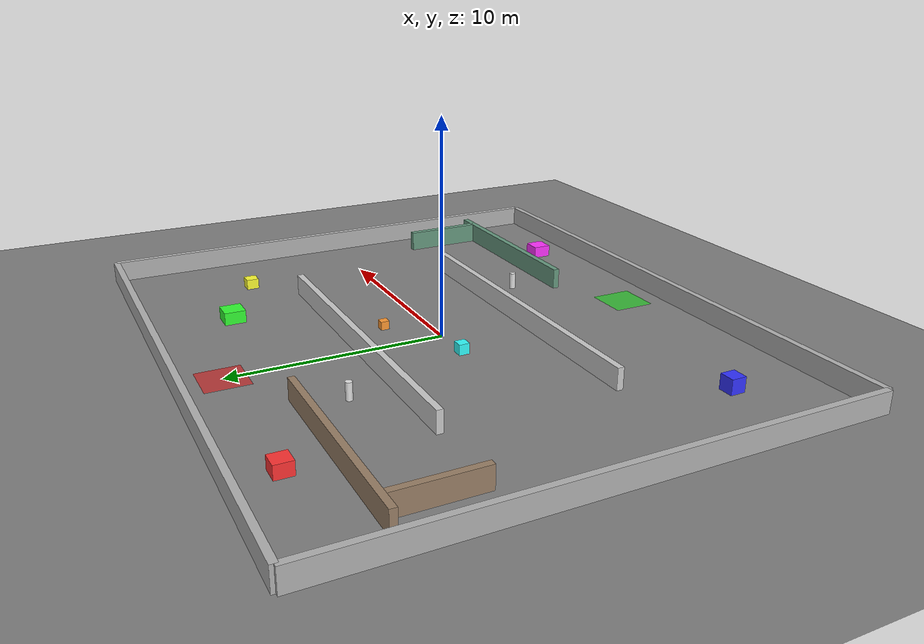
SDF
<?xml version="1.0"?>
<!--
  Complex SLAM Test Environment with Multiple Corners
  Features:
    - Two 90-degree corners
    - Multiple obstacles
    - Corridor navigation challenges
    - Open areas for path planning
-->
<sdf version="1.6">
  <world name="complex_slam_world">
    <!-- Physics -->
    <physics name="default_physics" type="ode">
      <max_step_size>0.001</max_step_size>
      <real_time_factor>1.0</real_time_factor>
      <real_time_update_rate>1000</real_time_update_rate>
    </physics>

    <!-- Scene -->
    <scene>
      <ambient>0.5 0.5 0.5 1</ambient>
      <background>0.7 0.7 0.7 1</background>
      <shadows>true</shadows>
    </scene>

    <!-- Lighting -->
    <light type="directional" name="sun">
      <cast_shadows>true</cast_shadows>
      <pose>0 0 10 0 0 0</pose>
      <diffuse>0.8 0.8 0.8 1</diffuse>
      <specular>0.2 0.2 0.2 1</specular>
      <attenuation>
        <range>1000</range>
        <constant>0.9</constant>
        <linear>0.01</linear>
        <quadratic>0.001</quadratic>
      </attenuation>
      <direction>-0.5 0.1 -0.9</direction>
    </light>

    <!-- Ground Plane -->
    <model name="ground_plane">
      <static>true</static>
      <link name="link">
        <collision name="collision">
          <geometry>
            <plane>
              <normal>0 0 1</normal>
              <size>50 50</size>
            </plane>
          </geometry>
          <surface>
            <friction>
              <ode>
                <mu>100</mu>
                <mu2>100</mu2>
              </ode>
            </friction>
          </surface>
        </collision>
        <visual name="visual">
          <geometry>
            <plane>
              <normal>0 0 1</normal>
              <size>50 50</size>
            </plane>
          </geometry>
          <material>
            <ambient>0.3 0.3 0.3 1</ambient>
            <diffuse>0.5 0.5 0.5 1</diffuse>
            <specular>0.1 0.1 0.1 1</specular>
          </material>
        </visual>
      </link>
    </model>

    <!-- ========== MAIN BUILDING STRUCTURE ========== -->

    <!-- Outer Walls -->
    <!-- North Wall (Top) -->
    <model name="wall_north">
      <static>true</static>
      <pose>0 12 0.5 0 0 0</pose>
      <link name="link">
        <collision name="collision">
          <geometry>
            <box>
              <size>28 0.3 1</size>
            </box>
          </geometry>
        </collision>
        <visual name="visual">
          <geometry>
            <box>
              <size>28 0.3 1</size>
            </box>
          </geometry>
          <material>
            <ambient>0.6 0.6 0.6 1</ambient>
            <diffuse>0.7 0.7 0.7 1</diffuse>
          </material>
        </visual>
      </link>
    </model>

    <!-- South Wall (Bottom) -->
    <model name="wall_south">
      <static>true</static>
      <pose>0 -12 0.5 0 0 0</pose>
      <link name="link">
        <collision name="collision">
          <geometry>
            <box>
              <size>28 0.3 1</size>
            </box>
          </geometry>
        </collision>
        <visual name="visual">
          <geometry>
            <box>
              <size>28 0.3 1</size>
            </box>
          </geometry>
          <material>
            <ambient>0.6 0.6 0.6 1</ambient>
            <diffuse>0.7 0.7 0.7 1</diffuse>
          </material>
        </visual>
      </link>
    </model>

    <!-- West Wall (Left) -->
    <model name="wall_west">
      <static>true</static>
      <pose>-14 0 0.5 0 0 0</pose>
      <link name="link">
        <collision name="collision">
          <geometry>
            <box>
              <size>0.3 24 1</size>
            </box>
          </geometry>
        </collision>
        <visual name="visual">
          <geometry>
            <box>
              <size>0.3 24 1</size>
            </box>
          </geometry>
          <material>
            <ambient>0.6 0.6 0.6 1</ambient>
            <diffuse>0.7 0.7 0.7 1</diffuse>
          </material>
        </visual>
      </link>
    </model>

    <!-- East Wall (Right) -->
    <model name="wall_east">
      <static>true</static>
      <pose>14 0 0.5 0 0 0</pose>
      <link name="link">
        <collision name="collision">
          <geometry>
            <box>
              <size>0.3 24 1</size>
            </box>
          </geometry>
        </collision>
        <visual name="visual">
          <geometry>
            <box>
              <size>0.3 24 1</size>
            </box>
          </geometry>
          <material>
            <ambient>0.6 0.6 0.6 1</ambient>
            <diffuse>0.7 0.7 0.7 1</diffuse>
          </material>
        </visual>
      </link>
    </model>

    <!-- ========== CORNER 1: Top-Left 90-degree turn ========== -->
    <!-- L-shaped wall creating corner 1 -->
    <model name="corner1_wall_horizontal">
      <static>true</static>
      <pose>-8 8 0.5 0 0 0</pose>
      <link name="link">
        <collision name="collision">
          <geometry>
            <box>
              <size>10 0.3 1</size>
            </box>
          </geometry>
        </collision>
        <visual name="visual">
          <geometry>
            <box>
              <size>10 0.3 1</size>
            </box>
          </geometry>
          <material>
            <ambient>0.5 0.4 0.3 1</ambient>
            <diffuse>0.6 0.5 0.4 1</diffuse>
          </material>
        </visual>
      </link>
    </model>

    <model name="corner1_wall_vertical">
      <static>true</static>
      <pose>-12 6 0.5 0 0 0</pose>
      <link name="link">
        <collision name="collision">
          <geometry>
            <box>
              <size>0.3 4 1</size>
            </box>
          </geometry>
        </collision>
        <visual name="visual">
          <geometry>
            <box>
              <size>0.3 4 1</size>
            </box>
          </geometry>
          <material>
            <ambient>0.5 0.4 0.3 1</ambient>
            <diffuse>0.6 0.5 0.4 1</diffuse>
          </material>
        </visual>
      </link>
    </model>

    <!-- ========== CORNER 2: Bottom-Right 90-degree turn ========== -->
    <model name="corner2_wall_horizontal">
      <static>true</static>
      <pose>8 -8 0.5 0 0 0</pose>
      <link name="link">
        <collision name="collision">
          <geometry>
            <box>
              <size>10 0.3 1</size>
            </box>
          </geometry>
        </collision>
        <visual name="visual">
          <geometry>
            <box>
              <size>10 0.3 1</size>
            </box>
          </geometry>
          <material>
            <ambient>0.3 0.5 0.4 1</ambient>
            <diffuse>0.4 0.6 0.5 1</diffuse>
          </material>
        </visual>
      </link>
    </model>

    <model name="corner2_wall_vertical">
      <static>true</static>
      <pose>12 -6 0.5 0 0 0</pose>
      <link name="link">
        <collision name="collision">
          <geometry>
            <box>
              <size>0.3 4 1</size>
            </box>
          </geometry>
        </collision>
        <visual name="visual">
          <geometry>
            <box>
              <size>0.3 4 1</size>
            </box>
          </geometry>
          <material>
            <ambient>0.3 0.5 0.4 1</ambient>
            <diffuse>0.4 0.6 0.5 1</diffuse>
          </material>
        </visual>
      </link>
    </model>

    <!-- ========== MIDDLE DIVIDER WALLS ========== -->
    <model name="divider_top">
      <static>true</static>
      <pose>0 4 0.5 0 0 0</pose>
      <link name="link">
        <collision name="collision">
          <geometry>
            <box>
              <size>16 0.3 1</size>
            </box>
          </geometry>
        </collision>
        <visual name="visual">
          <geometry>
            <box>
              <size>16 0.3 1</size>
            </box>
          </geometry>
          <material>
            <ambient>0.7 0.7 0.7 1</ambient>
            <diffuse>0.8 0.8 0.8 1</diffuse>
          </material>
        </visual>
      </link>
    </model>

    <model name="divider_bottom">
      <static>true</static>
      <pose>0 -4 0.5 0 0 0</pose>
      <link name="link">
        <collision name="collision">
          <geometry>
            <box>
              <size>16 0.3 1</size>
            </box>
          </geometry>
        </collision>
        <visual name="visual">
          <geometry>
            <box>
              <size>16 0.3 1</size>
            </box>
          </geometry>
          <material>
            <ambient>0.7 0.7 0.7 1</ambient>
            <diffuse>0.8 0.8 0.8 1</diffuse>
          </material>
        </visual>
      </link>
    </model>

    <!-- ========== OBSTACLES ========== -->

    <!-- Obstacles in Top-Left Area -->
    <model name="obstacle_1">
      <static>true</static>
      <pose>-8 10 0.3 0 0 0</pose>
      <link name="link">
        <collision name="collision">
          <geometry>
            <box>
              <size>0.8 0.8 0.6</size>
            </box>
          </geometry>
        </collision>
        <visual name="visual">
          <geometry>
            <box>
              <size>0.8 0.8 0.6</size>
            </box>
          </geometry>
          <material>
            <ambient>0.9 0.1 0.1 1</ambient>
            <diffuse>1.0 0.2 0.2 1</diffuse>
          </material>
        </visual>
      </link>
    </model>

    <!-- Obstacles in Top-Right Area -->
    <model name="obstacle_2">
      <static>true</static>
      <pose>6 8 0.3 0 0 0</pose>
      <link name="link">
        <collision name="collision">
          <geometry>
            <box>
              <size>1.0 1.0 0.6</size>
            </box>
          </geometry>
        </collision>
        <visual name="visual">
          <geometry>
            <box>
              <size>1.0 1.0 0.6</size>
            </box>
          </geometry>
          <material>
            <ambient>0.1 0.9 0.1 1</ambient>
            <diffuse>0.2 1.0 0.2 1</diffuse>
          </material>
        </visual>
      </link>
    </model>

    <model name="obstacle_3">
      <static>true</static>
      <pose>10 6 0.25 0 0 0</pose>
      <link name="link">
        <collision name="collision">
          <geometry>
            <box>
              <size>0.6 0.6 0.5</size>
            </box>
          </geometry>
        </collision>
        <visual name="visual">
          <geometry>
            <box>
              <size>0.6 0.6 0.5</size>
            </box>
          </geometry>
          <material>
            <ambient>0.9 0.9 0.1 1</ambient>
            <diffuse>1.0 1.0 0.2 1</diffuse>
          </material>
        </visual>
      </link>
    </model>

    <!-- Obstacles in Bottom-Left Area -->
    <model name="obstacle_4">
      <static>true</static>
      <pose>-10 -8 0.35 0 0 0</pose>
      <link name="link">
        <collision name="collision">
          <geometry>
            <box>
              <size>0.7 0.7 0.7</size>
            </box>
          </geometry>
        </collision>
        <visual name="visual">
          <geometry>
            <box>
              <size>0.7 0.7 0.7</size>
            </box>
          </geometry>
          <material>
            <ambient>0.1 0.1 0.9 1</ambient>
            <diffuse>0.2 0.2 1.0 1</diffuse>
          </material>
        </visual>
      </link>
    </model>

    <!-- Obstacles in Bottom-Right Area -->
    <model name="obstacle_5">
      <static>true</static>
      <pose>8 -10 0.3 0 0 0</pose>
      <link name="link">
        <collision name="collision">
          <geometry>
            <box>
              <size>0.9 0.9 0.6</size>
            </box>
          </geometry>
        </collision>
        <visual name="visual">
          <geometry>
            <box>
              <size>0.9 0.9 0.6</size>
            </box>
          </geometry>
          <material>
            <ambient>0.9 0.1 0.9 1</ambient>
            <diffuse>1.0 0.2 1.0 1</diffuse>
          </material>
        </visual>
      </link>
    </model>

    <!-- Obstacles in Center Corridor -->
    <model name="obstacle_center_1">
      <static>true</static>
      <pose>-2 0 0.25 0 0 0</pose>
      <link name="link">
        <collision name="collision">
          <geometry>
            <box>
              <size>0.5 0.5 0.5</size>
            </box>
          </geometry>
        </collision>
        <visual name="visual">
          <geometry>
            <box>
              <size>0.5 0.5 0.5</size>
            </box>
          </geometry>
          <material>
            <ambient>0.1 0.9 0.9 1</ambient>
            <diffuse>0.2 1.0 1.0 1</diffuse>
          </material>
        </visual>
      </link>
    </model>

    <model name="obstacle_center_2">
      <static>true</static>
      <pose>2 2 0.2 0 0 0</pose>
      <link name="link">
        <collision name="collision">
          <geometry>
            <box>
              <size>0.4 0.4 0.4</size>
            </box>
          </geometry>
        </collision>
        <visual name="visual">
          <geometry>
            <box>
              <size>0.4 0.4 0.4</size>
            </box>
          </geometry>
          <material>
            <ambient>0.9 0.5 0.1 1</ambient>
            <diffuse>1.0 0.6 0.2 1</diffuse>
          </material>
        </visual>
      </link>
    </model>

    <!-- Narrow Passage Markers -->
    <model name="passage_marker_left">
      <static>true</static>
      <pose>-4 6 0.4 0 0 0</pose>
      <link name="link">
        <collision name="collision">
          <geometry>
            <cylinder>
              <radius>0.15</radius>
              <length>0.8</length>
            </cylinder>
          </geometry>
        </collision>
        <visual name="visual">
          <geometry>
            <cylinder>
              <radius>0.15</radius>
              <length>0.8</length>
            </cylinder>
          </geometry>
          <material>
            <ambient>0.8 0.8 0.8 1</ambient>
            <diffuse>0.9 0.9 0.9 1</diffuse>
          </material>
        </visual>
      </link>
    </model>

    <model name="passage_marker_right">
      <static>true</static>
      <pose>4 -6 0.4 0 0 0</pose>
      <link name="link">
        <collision name="collision">
          <geometry>
            <cylinder>
              <radius>0.15</radius>
              <length>0.8</length>
            </cylinder>
          </geometry>
        </collision>
        <visual name="visual">
          <geometry>
            <cylinder>
              <radius>0.15</radius>
              <length>0.8</length>
            </cylinder>
          </geometry>
          <material>
            <ambient>0.8 0.8 0.8 1</ambient>
            <diffuse>0.9 0.9 0.9 1</diffuse>
          </material>
        </visual>
      </link>
    </model>

    <!-- Starting Area Markers -->
    <model name="start_marker">
      <static>true</static>
      <pose>0 -10 0.01 0 0 0</pose>
      <link name="link">
        <visual name="visual">
          <geometry>
            <plane>
              <size>2 2</size>
            </plane>
          </geometry>
          <material>
            <ambient>0 1 0 0.5</ambient>
            <diffuse>0 1 0 0.5</diffuse>
            <transparency>0.5</transparency>
          </material>
        </visual>
      </link>
    </model>

    <!-- Goal Area Markers -->
    <model name="goal_marker">
      <static>true</static>
      <pose>0 10 0.01 0 0 0</pose>
      <link name="link">
        <visual name="visual">
          <geometry>
            <plane>
              <size>2 2</size>
            </plane>
          </geometry>
          <material>
            <ambient>1 0 0 0.5</ambient>
            <diffuse>1 0 0 0.5</diffuse>
            <transparency>0.5</transparency>
          </material>
        </visual>
      </link>
    </model>

  </world>
</sdf>
